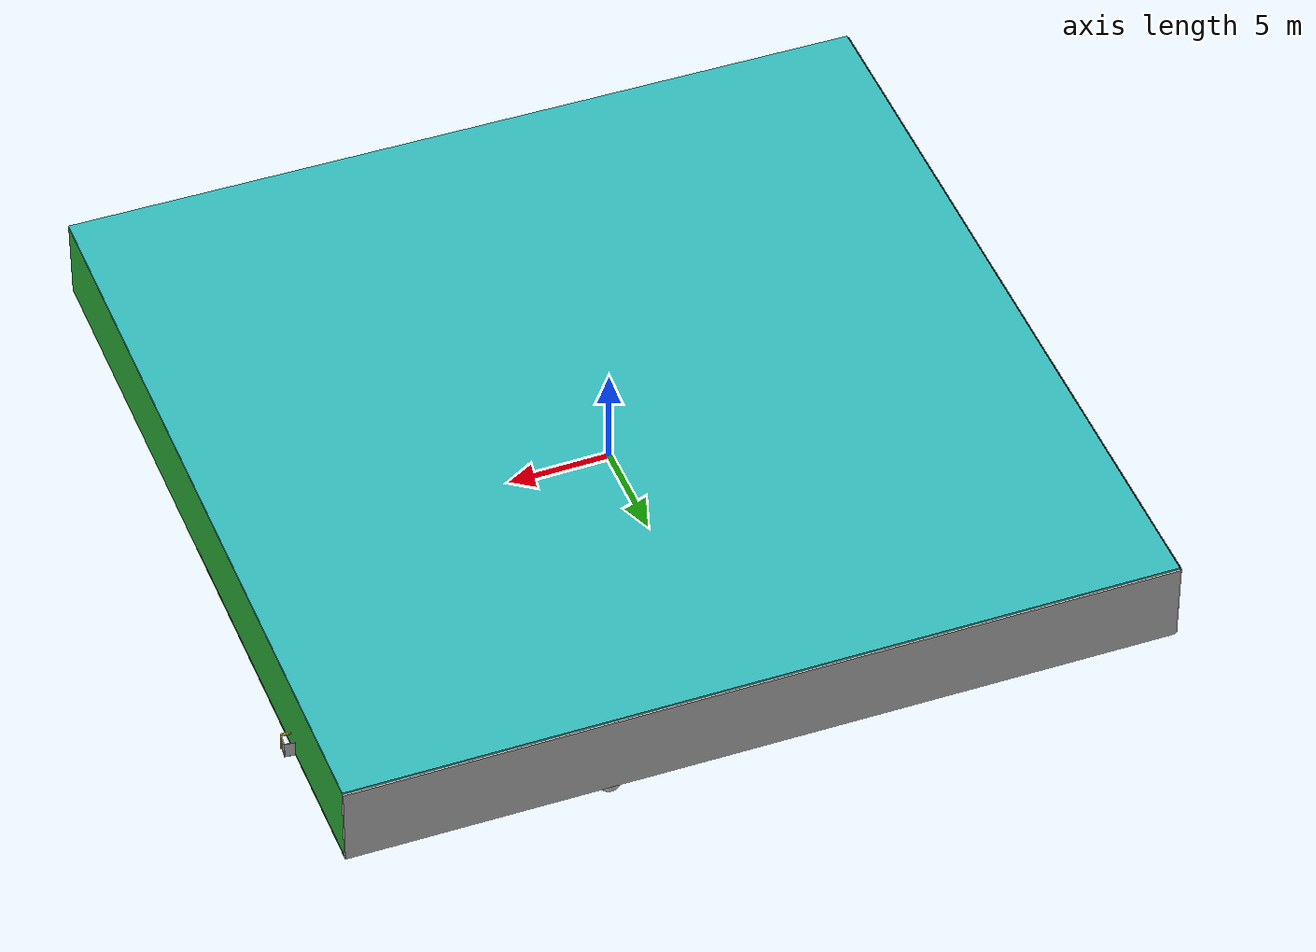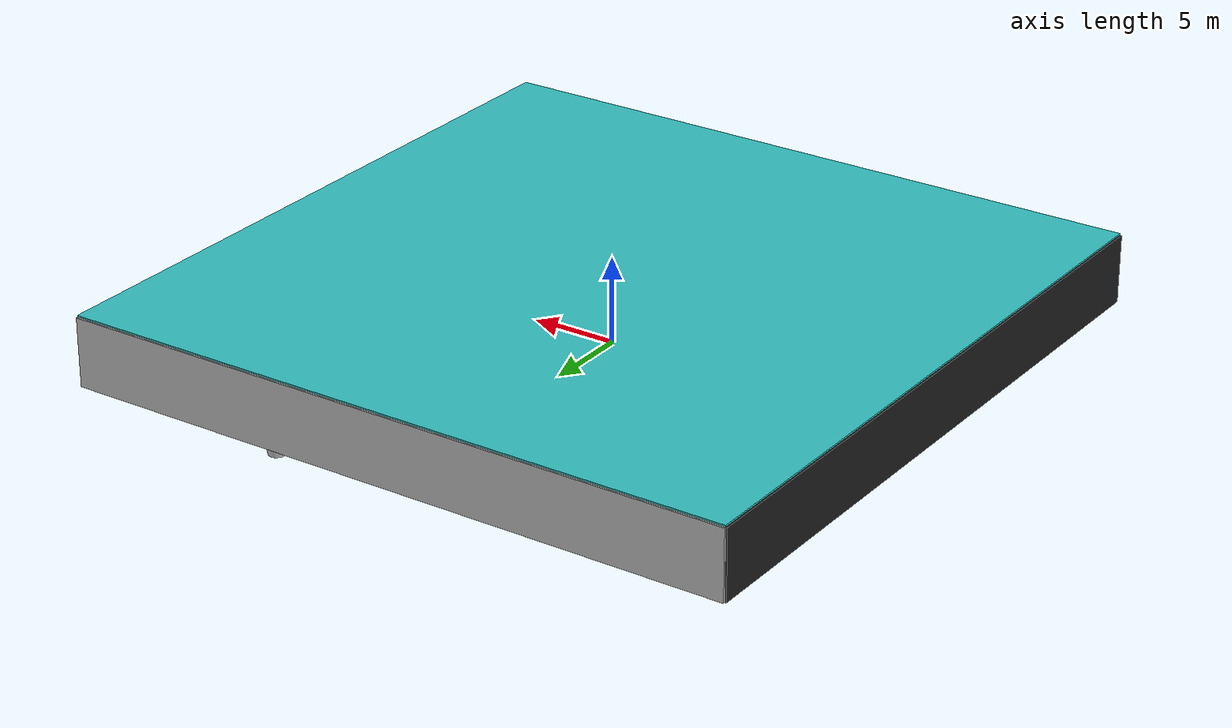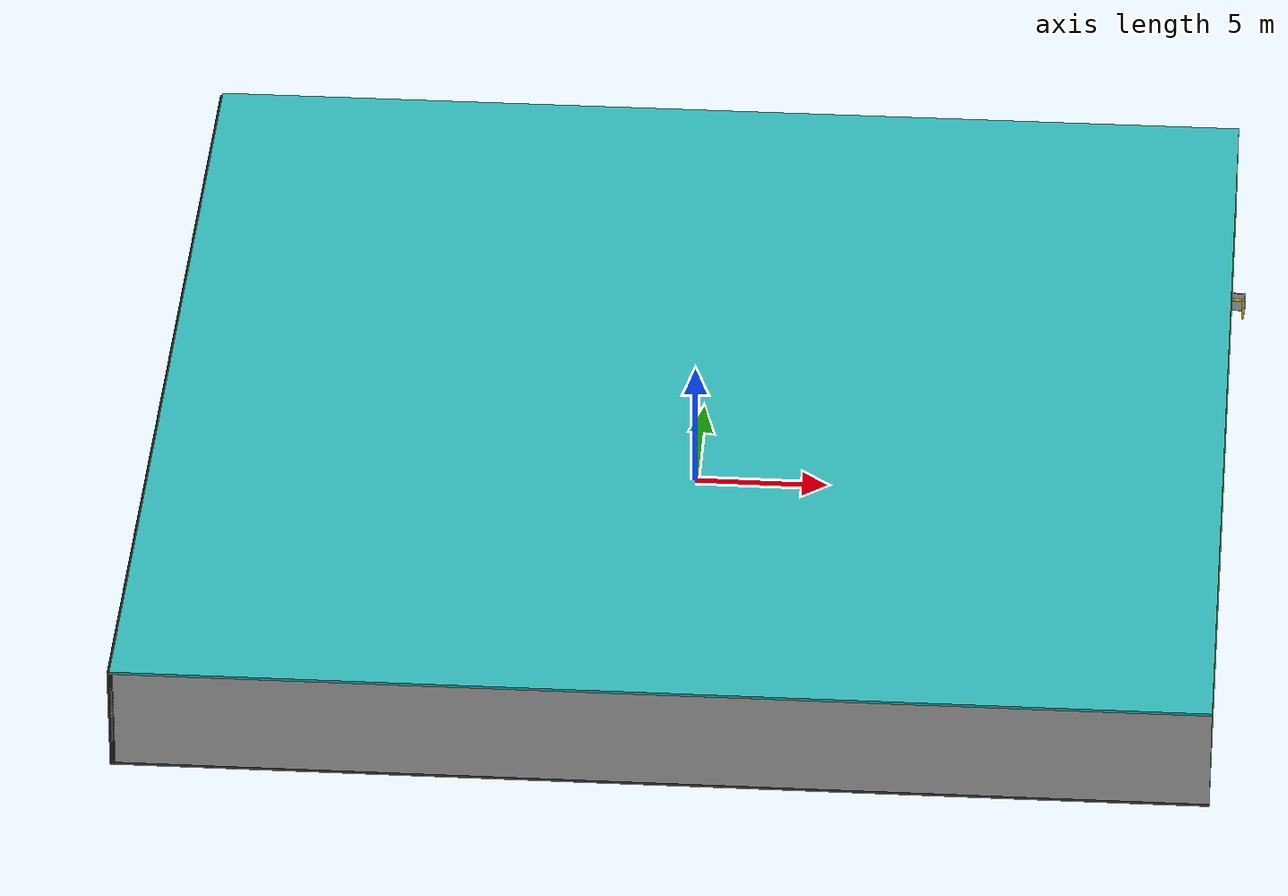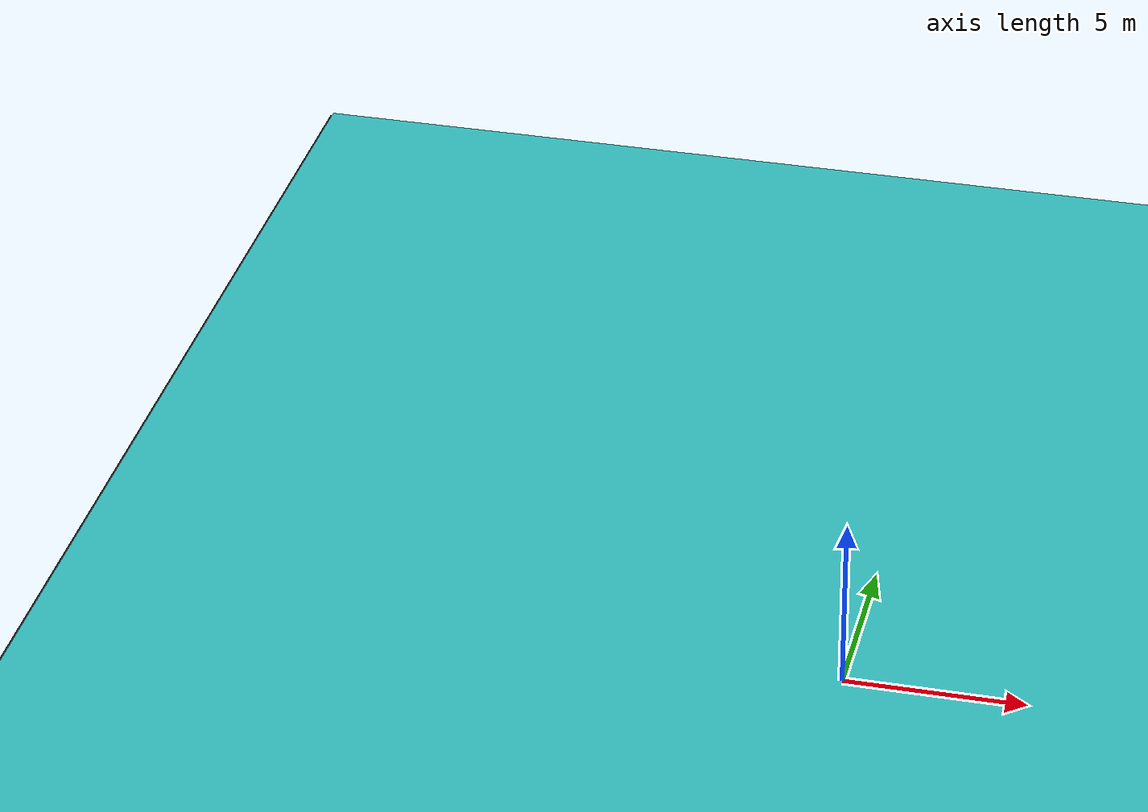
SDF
<sdf version="1.4">
 <world name="default">
  <physics type="ode">
   <max_step_size>0.001</max_step_size>
   <real_time_factor>1</real_time_factor>
   <real_time_update_rate>1000</real_time_update_rate>
   <gravity>0 0 -9.8</gravity>
  </physics>
  <scene><ambient>0.4 0.4 0.4 1</ambient><background>0.7 0.7 0.7 1</background><shadows>1</shadows></scene>
  <model name="Surrounding">
   <static>1</static>
   <link name="Ceiling">
    <collision name="Ceiling_Collision"><geometry><box><size>40 40 0.1</size></box></geometry></collision>
    <visual name="Ceiling_Visual">
     <geometry><box><size>40 40 0.1</size></box></geometry>
     <material>
      <script><uri>file://media/materials/scripts/gazebo.material</uri><name>Gazebo/TurquoiseGlow</name></script>
     </material>
    </visual>
    <pose>0 0 4.05 0 0 0</pose>
   </link>
   <link name="Wall_South">
    <collision name="Wall_South_Collision">
     <geometry><box><size>40 0 4</size></box></geometry>
     <pose>0 0 2 0 -0 0</pose>
    </collision>
    <visual name="Wall_South_Visual">
     <pose>0 0 2 0 -0 0</pose>
     <geometry><box><size>40 0 4</size></box></geometry>
     <material>
      <script><uri>file://media/materials/scripts/gazebo.material</uri><name>Gazebo/PioneerBody</name></script>
     </material>
    </visual>
    <velocity_decay><linear>0</linear><angular>0</angular></velocity_decay>
    <pose>0 -20 0 0 -0 0</pose>
   </link>
   <link name="Wall_East">
    <collision name="Wall_21_Collision">
     <geometry><box><size>40 0 4</size></box></geometry>
     <pose>0 0 2 0 -0 0</pose>
    </collision>
    <visual name="Wall_21_Visual">
     <pose>0 0 2 0 -0 0</pose>
     <geometry><box><size>40 0 4</size></box></geometry>
     <material>
      <script><uri>file://media/materials/scripts/gazebo.material</uri><name>Gazebo/GreenGlow</name></script>
     </material>
    </visual>
    <velocity_decay><linear>0</linear><angular>0</angular></velocity_decay>
    <pose>20 0 0 0 -0 1.5708</pose>
   </link>
   <link name="Wall_North">
    <collision name="Wall_22_Collision">
     <geometry><box><size>40 0.2 4</size></box></geometry>
     <pose>0 0 2 0 -0 0</pose>
    </collision>
    <visual name="Wall_22_Visual">
     <pose>0 0 2 0 -0 0</pose>
     <geometry><box><size>40 0.2 4</size></box></geometry>
     <material>
      <script><uri>file://media/materials/scripts/gazebo.material</uri><name>Gazebo/Pioneer2Body</name></script>
     </material>
    </visual>
    <velocity_decay><linear>0</linear><angular>0</angular></velocity_decay>
    <pose>0 20 0 0 -0 0</pose>
   </link>
   <link name="Wall_West">
    <collision name="Wall_23_Collision">
     <geometry><box><size>40 0.2 4</size></box></geometry>
     <pose>0 0 2 0 -0 0</pose>
    </collision>
    <visual name="Wall_23_Visual">
     <pose>0 0 2 0 -0 0</pose>
     <geometry><box><size>40 0.2 4</size></box></geometry>
     <material>
      <script><uri>file://media/materials/scripts/gazebo.material</uri><name>Gazebo/FlatBlack</name></script>
     </material>
    </visual>
    <velocity_decay><linear>0</linear><angular>0</angular></velocity_decay>
    <pose>-20 0 0 0 0 -1.5708</pose>
   </link>
   <link name="Ground_link">
    <collision name="collision">
     <pose>0 0 .05 0 -0 0</pose>
     <geometry><box><size>40 40 0.1</size></box></geometry>
    </collision>
    <visual name="visual">
     <pose>0 0 .05 0 -0 0</pose>
     <geometry><box><size>40 40 0.1</size></box></geometry>
     <material>
      <script><uri>file://media/materials/scripts/gazebo.material</uri><name>Gazebo/DarkGrey</name></script>
     </material>
    </visual>
   </link>
   <static>1</static>
  </model>
  <spherical_coordinates>
   <surface_model>EARTH_WGS84</surface_model>
   <latitude_deg>0</latitude_deg>
   <longitude_deg>0</longitude_deg>
   <elevation>0</elevation>
   <heading_deg>0</heading_deg>
  </spherical_coordinates>
  <light name="lightball_0" type="diffuse">
   <diffuse>0.8 0.8 0.8 1</diffuse>
   <specular>0.2 0.2 0.2 1</specular>
   <attenuation>
    <range>100</range>
    <constant>0.7</constant>
    <linear>0.01</linear>
    <quadratic>0.001</quadratic>
   </attenuation>
   <direction>-0.5 0.1 -0.9</direction>
   <pose>17.1950398933 1.52340579888 3.36579273794 0 0 0</pose>
  </light>
  <light name="lightball_1" type="diffuse">
   <diffuse>0.8 0.8 0.8 1</diffuse>
   <specular>0.2 0.2 0.2 1</specular>
   <attenuation>
    <range>100</range>
    <constant>0.7</constant>
    <linear>0.01</linear>
    <quadratic>0.001</quadratic>
   </attenuation>
   <direction>-0.5 0.1 -0.9</direction>
   <pose>11.5145455052 -0.476626288936 1.94318478318 0 0 0</pose>
  </light>
  <light name="lightball_2" type="diffuse">
   <diffuse>0.8 0.8 0.8 1</diffuse>
   <specular>0.2 0.2 0.2 1</specular>
   <attenuation>
    <range>100</range>
    <constant>0.7</constant>
    <linear>0.01</linear>
    <quadratic>0.001</quadratic>
   </attenuation>
   <direction>-0.5 0.1 -0.9</direction>
   <pose>-1.25723331347 -1.53501683383 1.11635649462 0 0 0</pose>
  </light>
  <light name="lightball_3" type="diffuse">
   <diffuse>0.8 0.8 0.8 1</diffuse>
   <specular>0.2 0.2 0.2 1</specular>
   <attenuation>
    <range>100</range>
    <constant>0.7</constant>
    <linear>0.01</linear>
    <quadratic>0.001</quadratic>
   </attenuation>
   <direction>-0.5 0.1 -0.9</direction>
   <pose>-1.37815876262 0.152905220363 1.46758902172 0 0 0</pose>
  </light>
  <light name="lightball_4" type="diffuse">
   <diffuse>0.8 0.8 0.8 1</diffuse>
   <specular>0.2 0.2 0.2 1</specular>
   <attenuation>
    <range>100</range>
    <constant>0.7</constant>
    <linear>0.01</linear>
    <quadratic>0.001</quadratic>
   </attenuation>
   <direction>-0.5 0.1 -0.9</direction>
   <pose>-9.76829045216 10.9815286515 3.01147337925 0 0 0</pose>
  </light>
  <light name="lightball_5" type="diffuse">
   <diffuse>0.8 0.8 0.8 1</diffuse>
   <specular>0.2 0.2 0.2 1</specular>
   <attenuation>
    <range>100</range>
    <constant>0.7</constant>
    <linear>0.01</linear>
    <quadratic>0.001</quadratic>
   </attenuation>
   <direction>-0.5 0.1 -0.9</direction>
   <pose>0.979733120933 9.67283650461 0.628512180669 0 0 0</pose>
  </light>
  <light name="lightball_6" type="diffuse">
   <diffuse>0.8 0.8 0.8 1</diffuse>
   <specular>0.2 0.2 0.2 1</specular>
   <attenuation>
    <range>100</range>
    <constant>0.7</constant>
    <linear>0.01</linear>
    <quadratic>0.001</quadratic>
   </attenuation>
   <direction>-0.5 0.1 -0.9</direction>
   <pose>15.7825248406 6.94056076726 3.71946546637 0 0 0</pose>
  </light>
  <light name="lightball_7" type="diffuse">
   <diffuse>0.8 0.8 0.8 1</diffuse>
   <specular>0.2 0.2 0.2 1</specular>
   <attenuation>
    <range>100</range>
    <constant>0.7</constant>
    <linear>0.01</linear>
    <quadratic>0.001</quadratic>
   </attenuation>
   <direction>-0.5 0.1 -0.9</direction>
   <pose>16.7571220412 14.529721912 1.86794351913 0 0 0</pose>
  </light>
  <light name="lightball_8" type="diffuse">
   <diffuse>0.8 0.8 0.8 1</diffuse>
   <specular>0.2 0.2 0.2 1</specular>
   <attenuation>
    <range>100</range>
    <constant>0.7</constant>
    <linear>0.01</linear>
    <quadratic>0.001</quadratic>
   </attenuation>
   <direction>-0.5 0.1 -0.9</direction>
   <pose>9.94083808413 18.5111942527 2.27572636198 0 0 0</pose>
  </light>
  <light name="lightball_9" type="diffuse">
   <diffuse>0.8 0.8 0.8 1</diffuse>
   <specular>0.2 0.2 0.2 1</specular>
   <attenuation>
    <range>100</range>
    <constant>0.7</constant>
    <linear>0.01</linear>
    <quadratic>0.001</quadratic>
   </attenuation>
   <direction>-0.5 0.1 -0.9</direction>
   <pose>-1.50381692652 -11.6818735711 0.510300355634 0 0 0</pose>
  </light>
  <light name="lightball_10" type="diffuse">
   <diffuse>0.8 0.8 0.8 1</diffuse>
   <specular>0.2 0.2 0.2 1</specular>
   <attenuation>
    <range>100</range>
    <constant>0.7</constant>
    <linear>0.01</linear>
    <quadratic>0.001</quadratic>
   </attenuation>
   <direction>-0.5 0.1 -0.9</direction>
   <pose>-3.54858285664 -8.41323004486 3.89097313025 0 0 0</pose>
  </light>
  <light name="lightball_11" type="diffuse">
   <diffuse>0.8 0.8 0.8 1</diffuse>
   <specular>0.2 0.2 0.2 1</specular>
   <attenuation>
    <range>100</range>
    <constant>0.7</constant>
    <linear>0.01</linear>
    <quadratic>0.001</quadratic>
   </attenuation>
   <direction>-0.5 0.1 -0.9</direction>
   <pose>17.4071292697 6.63045358165 1.10065959396 0 0 0</pose>
  </light>
  <light name="lightball_12" type="diffuse">
   <diffuse>0.8 0.8 0.8 1</diffuse>
   <specular>0.2 0.2 0.2 1</specular>
   <attenuation>
    <range>100</range>
    <constant>0.7</constant>
    <linear>0.01</linear>
    <quadratic>0.001</quadratic>
   </attenuation>
   <direction>-0.5 0.1 -0.9</direction>
   <pose>-18.6734255468 -4.96823863499 1.166602129 0 0 0</pose>
  </light>
  <include><uri>model://cabinet</uri><pose>-13.7819393923 4.47937218644 0 0 0 1.53930321638</pose></include>
  <include>
   <uri>model://robocup_3Dsim_goal</uri>
   <pose>-14.0041854547 12.4732440774 0 0 0 1.56915571021</pose>
  </include>
  <include><uri>model://cabinet</uri><pose>-10.6068588389 -10.8033057449 0 0 0 2.68961598201</pose></include>
  <include>
   <uri>model://robocup_3Dsim_goal</uri>
   <pose>-11.4542067232 -4.97287019588 0 0 0 2.44186407861</pose>
  </include>
  <include><uri>model://table</uri><pose>-12.6955603686 6.56455700382 0 0 0 1.47450510736</pose></include>
  <include><uri>model://cabinet</uri><pose>-11.9838554397 10.0642847991 0 0 0 1.332854807</pose></include>
  <include>
   <uri>model://robocup_3Dsim_goal</uri>
   <pose>-9.23298865936 3.84536287853 0 0 0 1.46994527953</pose>
  </include>
  <include><uri>model://cabinet</uri><pose>-8.91530169358 6.4446823567 0 0 0 1.93919062802</pose></include>
  <include><uri>model://table</uri><pose>-8.22944613376 11.4657896486 0 0 0 1.95543893356</pose></include>
  <include><uri>model://cabinet</uri><pose>-6.66005922369 -7.56430110817 0 0 0 1.8993445526</pose></include>
  <include>
   <uri>model://robocup_3Dsim_goal</uri>
   <pose>-6.27562371768 10.2606931075 0 0 0 1.75597929939</pose>
  </include>
  <include><uri>model://table</uri><pose>-5.2995648928 13.3896268099 0 0 0 1.86473771087</pose></include>
  <include>
   <uri>model://robocup_3Dsim_goal</uri>
   <pose>-3.58974937859 -6.31854275361 0 0 0 1.63158127725</pose>
  </include>
  <include>
   <uri>model://robocup_3Dsim_goal</uri>
   <pose>-2.83567922243 5.88442989499 0 0 0 0.402951263064</pose>
  </include>
  <include>
   <uri>model://robocup_3Dsim_goal</uri>
   <pose>0.294877522645 -12.4299361234 0 0 0 0.558585135099</pose>
  </include>
  <include>
   <uri>model://construction_cone</uri>
   <pose>1.59526769307 -8.90194005903 0 0 0 0.022300252082</pose>
  </include>
  <include><uri>model://cabinet</uri><pose>4.62646683939 4.18468520075 0 0 0 0.572265659987</pose></include>
  <include><uri>model://cabinet</uri><pose>2.87021371651 15.9353438641 0 0 0 1.54805927213</pose></include>
  <include>
   <uri>model://textured_shapes</uri>
   <pose>5.53675409464 -13.9188065182 0 0 0 1.44785217087</pose>
  </include>
  <include>
   <uri>model://textured_shapes</uri>
   <pose>7.56384222278 17.9206229365 0 0 0 0.153821472817</pose>
  </include>
  <include>
   <uri>model://textured_shapes</uri>
   <pose>9.07546133351 6.32874742587 0 0 0 1.81471430213</pose>
  </include>
  <include>
   <uri>model://textured_shapes</uri>
   <pose>9.19256112194 16.0438687281 0 0 0 0.581998210496</pose>
  </include>
  <include>
   <uri>model://construction_cone</uri>
   <pose>13.5923879792 -3.59953023837 0 0 0 1.18235740132</pose>
  </include>
  <include>
   <uri>model://textured_shapes</uri>
   <pose>12.274845813 13.2201795272 0 0 0 1.52475812523</pose>
  </include>
  <include>
   <uri>model://construction_cone</uri>
   <pose>11.4497002548 17.9033087206 0 0 0 1.77796507154</pose>
  </include>
  <include>
   <uri>model://textured_shapes</uri>
   <pose>14.7084906982 -11.6418640304 0 0 0 0.0435031257603</pose>
  </include>
  <include>
   <uri>model://construction_cone</uri>
   <pose>18.6583901903 -9.27950529597 0 0 0 2.04191605581</pose>
  </include>
  <include><uri>model://cabinet</uri><pose>18.0858076863 4.05205979012 0 0 0 0.759636615148</pose></include>
  <include><uri>model://cabinet</uri><pose>19.087879639 7.4454431369 0 0 0 2.55783049489</pose></include>
  <include>
   <uri>model://robocup_3Dsim_goal</uri>
   <pose>19.3928400115 12.7571373985 0 0 0 1.45829357545</pose>
  </include>
 </world>
</sdf>

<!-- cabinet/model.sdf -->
<sdf version="1.5">
  <model name="cabinet">
    <static>true</static>
    <link name="cabinet_bottom_plate">
      <inertial>
        <pose>0 0 -1 0 0 0</pose>
        <inertia>
          <ixx>2.050000</ixx>
          <ixy>0</ixy>
          <ixz>0</ixz>
          <iyy>2.050000</iyy>
          <iyz>0</iyz>
          <izz>2.050000</izz>
        </inertia>
        <mass>25.000000</mass>
      </inertial>
      <collision name="cabinet_bottom_plate_geom">
        <pose>0 0 0.010000 0 0 0</pose>
        <geometry>
          <box>
            <size>0.450000 0.450000 0.020000</size>
          </box>
        </geometry>
      </collision>
      <visual name="cabinet_bottom_plate_geom_visual">
        <pose>0 0 0.010000 0 0 0</pose>
        <geometry>
          <box>
            <size>0.450000 0.450000 0.020000</size>
          </box>
        </geometry>
        <material>
          <script>
            <uri>model://media/materials/scripts/gazebo.material</uri>
            <name>Gazebo/Wood</name>
          </script>
        </material>
      </visual>
      <collision name="cabinet_bottom_plate_geom_cabinet_back_plate">
        <pose>0.235000 0 0.510000 0 0 0</pose>
        <geometry>
          <box>
            <size>0.020000 0.450000 1.020000</size>
          </box>
        </geometry>
      </collision>
      <visual name="cabinet_bottom_plate_geom_cabinet_back_plate_visual">
        <pose>0.235000 0 0.510000 0 0 0</pose>
        <geometry>
          <box>
            <size>0.020000 0.450000 1.020000</size>
          </box>
        </geometry>
        <material>
          <script>
            <uri>model://media/materials/scripts/gazebo.material</uri>
            <name>Gazebo/Wood</name>
          </script>
        </material>
      </visual>
      <collision name="cabinet_bottom_plate_geom_cabinet_left_plate">
        <pose>0 0.235000 0.510000 0 0 0</pose>
        <geometry>
          <box>
            <size>0.450000 0.020000 1.020000</size>
          </box>
        </geometry>
      </collision>
      <visual name="cabinet_bottom_plate_geom_cabinet_left_plate_visual">
        <pose>0 0.235000 0.510000 0 0 0</pose>
        <geometry>
          <box>
            <size>0.450000 0.020000 1.020000</size>
          </box>
        </geometry>
        <material>
          <script>
            <uri>model://media/materials/scripts/gazebo.material</uri>
            <name>Gazebo/Wood</name>
          </script>
        </material>
      </visual>
      <collision name="cabinet_bottom_plate_geom_cabinet_middle_plate">
        <pose>0 0 0.510000 0 0 0</pose>
        <geometry>
          <box>
            <size>0.450000 0.450000 0.020000</size>
          </box>
        </geometry>
      </collision>
      <visual name="cabinet_bottom_plate_geom_cabinet_middle_plate_visual">
        <pose>0 0 0.510000 0 0 0</pose>
        <geometry>
          <box>
            <size>0.450000 0.450000 0.020000</size>
          </box>
        </geometry>
        <material>
          <script>
            <uri>model://media/materials/scripts/gazebo.material</uri>
            <name>Gazebo/Wood</name>
          </script>
        </material>
      </visual>
      <collision name="cabinet_bottom_plate_geom_cabinet_right_plate">
        <pose>0 -0.235000 0.510000 0 0 0</pose>
        <geometry>
          <box>
            <size>0.450000 0.020000 1.020000</size>
          </box>
        </geometry>
      </collision>
      <visual name="cabinet_bottom_plate_geom_cabinet_right_plate_visual">
        <pose>0 -0.235000 0.510000 0 0 0</pose>
        <geometry>
          <box>
            <size>0.450000 0.020000 1.020000</size>
          </box>
        </geometry>
        <material>
          <script>
            <uri>model://media/materials/scripts/gazebo.material</uri>
            <name>Gazebo/Wood</name>
          </script>
        </material>
      </visual>
      <collision name="cabinet_bottom_plate_geom_cabinet_top_plate">
        <pose>0 0 1.010000 0 0 0</pose>
        <geometry>
          <box>
            <size>0.450000 0.450000 0.020000</size>
          </box>
        </geometry>
      </collision>
      <visual name="cabinet_bottom_plate_geom_cabinet_top_plate_visual">
        <pose>0 0 1.010000 0 0 0</pose>
        <geometry>
          <box>
            <size>0.450000 0.450000 0.020000</size>
          </box>
        </geometry>
        <material>
          <script>
            <uri>model://media/materials/scripts/gazebo.material</uri>
            <name>Gazebo/Wood</name>
          </script>
        </material>
      </visual>
    </link>
  </model>
</sdf>

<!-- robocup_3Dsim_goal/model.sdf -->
<sdf version="1.5">
  <model name="robocup_3d_goal">
    <static>true</static>
    <link name="left_post">
      <pose>0 1.05 0.45 0 0 0</pose>
      <collision name="collision">
        <geometry>
          <cylinder>
            <radius>0.05</radius>
            <length>0.9</length>
          </cylinder>
        </geometry>
      </collision>
      <visual name="visual">
        <geometry>
          <cylinder>
            <radius>0.05</radius>
            <length>0.9</length>
          </cylinder>
        </geometry>
        <material>
          <script>
            <uri>file://media/materials/scripts/gazebo.material</uri>
            <name>Gazebo/ZincYellow</name>
          </script>
        </material>
      </visual>
    </link>
    <link name="left_support_horiz_lower">
      <pose>0.30 1.05 0.01 0 0 0</pose>
      <collision name="collision">
        <geometry>
          <box>
            <size>0.50 0.02 0.02</size>
          </box>
        </geometry>
      </collision>
      <visual name="visual">
        <geometry>
          <box>
            <size>0.50 0.02 0.02</size>
          </box>
        </geometry>
        <material>
          <script>
            <uri>file://media/materials/scripts/gazebo.material</uri>
            <name>Gazebo/White</name>
          </script>
        </material>
      </visual>
    </link>
    <link name="left_support_horiz_upper">
      <pose>0.30 1.05 0.79 0 0 0</pose>
      <collision name="collision">
        <geometry>
          <box>
            <size>0.50 0.02 0.02</size>
          </box>
        </geometry>
      </collision>
      <visual name="visual">
        <geometry>
          <box>
            <size>0.50 0.02 0.02</size>
          </box>
        </geometry>
        <material>
          <script>
            <uri>file://media/materials/scripts/gazebo.material</uri>
            <name>Gazebo/White</name>
          </script>
        </material>
      </visual>
    </link>
    <link name="left_support_vertical">
      <pose>0.56 1.05 0.4 0 1.5708 0</pose>
      <collision name="collision">
        <geometry>
          <box>
            <size>0.80 0.02 0.02</size>
          </box>
        </geometry>
      </collision>
      <visual name="visual">
        <geometry>
          <box>
            <size>0.80 0.02 0.02</size>
          </box>
        </geometry>
        <material>
          <script>
            <uri>file://media/materials/scripts/gazebo.material</uri>
            <name>Gazebo/White</name>
          </script>
        </material>
      </visual>
    </link>
    <link name="right_support_horiz_lower">
      <pose>0.30 -1.05 0.01 0 0 0</pose>
      <collision name="collision">
        <geometry>
          <box>
            <size>0.50 0.02 0.02</size>
          </box>
        </geometry>
      </collision>
      <visual name="visual">
        <geometry>
          <box>
            <size>0.50 0.02 0.02</size>
          </box>
        </geometry>
        <material>
          <script>
            <uri>file://media/materials/scripts/gazebo.material</uri>
            <name>Gazebo/White</name>
          </script>
        </material>
      </visual>
    </link>
    <link name="right_support_horiz_upper">
      <pose>0.30 -1.05 0.79 0 0 0</pose>
      <collision name="collision">
        <geometry>
          <box>
            <size>0.50 0.02 0.02</size>
          </box>
        </geometry>
      </collision>
      <visual name="visual">
        <geometry>
          <box>
            <size>0.50 0.02 0.02</size>
          </box>
        </geometry>
        <material>
          <script>
            <uri>file://media/materials/scripts/gazebo.material</uri>
            <name>Gazebo/White</name>
          </script>
        </material>
      </visual>
    </link>
    <link name="right_support_vertical">
      <pose>0.56 -1.05 0.4 0 1.5708 0</pose>
      <collision name="collision">
        <geometry>
          <box>
            <size>0.80 0.02 0.02</size>
          </box>
        </geometry>
      </collision>
      <visual name="visual">
        <geometry>
          <box>
            <size>0.80 0.02 0.02</size>
          </box>
        </geometry>
        <material>
          <script>
            <uri>file://media/materials/scripts/gazebo.material</uri>
            <name>Gazebo/White</name>
          </script>
        </material>
      </visual>
    </link>
    <link name="center_support_horiz_lower">
      <pose>0.56 0 0.01 0 1.5708 0</pose>
      <collision name="collision">
        <geometry>
          <box>
            <size>0.02 2.08 0.02</size>
          </box>
        </geometry>
      </collision>
      <visual name="visual">
        <geometry>
          <box>
            <size>0.02 2.08 0.02</size>
          </box>
        </geometry>
        <material>
          <script>
            <uri>file://media/materials/scripts/gazebo.material</uri>
            <name>Gazebo/White</name>
          </script>
        </material>
      </visual>
    </link>
    <link name="center_support_horiz_upper">
      <pose>0.56 0 0.79 0 1.5708 0</pose>
      <collision name="collision">
        <geometry>
          <box>
            <size>0.02 2.08 0.02</size>
          </box>
        </geometry>
      </collision>
      <visual name="visual">
        <geometry>
          <box>
            <size>0.02 2.08 0.02</size>
          </box>
        </geometry>
        <material>
          <script>
            <uri>file://media/materials/scripts/gazebo.material</uri>
            <name>Gazebo/White</name>
          </script>
        </material>
      </visual>
    </link>
    <link name="right_post">
      <pose>0 -1.05 0.45 0 0 0</pose>
      <collision name="collision">
        <geometry>
          <cylinder>
            <radius>0.05</radius>
            <length>0.9</length>
          </cylinder>
        </geometry>
      </collision>
      <visual name="visual">
        <geometry>
          <cylinder>
            <radius>0.05</radius>
            <length>0.9</length>
          </cylinder>
        </geometry>
        <material>
          <script>
            <uri>file://media/materials/scripts/gazebo.material</uri>
            <name>Gazebo/ZincYellow</name>
          </script>
        </material>
      </visual>
    </link>
    <link name="crossbar">
      <pose>0 0 0.85 1.57 1.57 0</pose>
      <collision name="collision">
        <geometry>
          <cylinder>
            <radius>0.05</radius>
            <length>2.0</length>
          </cylinder>
        </geometry>
      </collision>
      <visual name="visual">
        <geometry>
          <cylinder>
            <radius>0.05</radius>
            <length>2.0</length>
          </cylinder>
        </geometry>
        <material>
          <script>
            <uri>file://media/materials/scripts/gazebo.material</uri>
            <name>Gazebo/ZincYellow</name>
          </script>
        </material>
      </visual>
    </link>
    <link name="center_net">
      <pose>0.56 0 0.40 0 0 0</pose>
      <collision name="collision">
        <geometry>
          <box>
            <size>0.01 2.1 0.80</size>
          </box>
        </geometry>
      </collision>
      <visual name="visual">
        <geometry>
          <box>
            <size>0.01 2.1 0.80</size>
          </box>
        </geometry>
        <material>
          <script>
            <uri>model://../model_source/models/robocup09_spl_field/materials/scripts/</uri>
            <uri>model://../model_source/models/robocup09_spl_field/materials/textures/</uri>
            <name>RoboCup/Net</name>
          </script>
        </material>
      </visual>
    </link>
    <link name="left_net">
      <pose>0.30 1.05 0.40 0 0 0</pose>
      <collision name="collision">
        <geometry>
          <box>
            <size>0.50 0.01 0.76</size>
          </box>
        </geometry>
      </collision>
      <visual name="visual">
        <geometry>
          <box>
            <size>0.50 0.01 0.76</size>
          </box>
        </geometry>
        <material>
          <script>
            <uri>model://../model_source/models/robocup09_spl_field/materials/scripts/</uri>
            <uri>model://../model_source/models/robocup09_spl_field/materials/textures/</uri>
            <name>RoboCup/Net</name>
          </script>
        </material>
      </visual>
    </link>
    <link name="right_net">
      <pose>0.30 -1.05 0.40 0 0 0</pose>
      <collision name="collision">
        <geometry>
          <box>
            <size>0.50 0.01 0.76</size>
          </box>
        </geometry>
      </collision>
      <visual name="visual">
        <geometry>
          <box>
            <size>0.50 0.01 0.76</size>
          </box>
        </geometry>
        <material>
          <script>
            <uri>model://../model_source/models/robocup09_spl_field/materials/scripts/</uri>
            <uri>model://../model_source/models/robocup09_spl_field/materials/textures/</uri>
            <name>RoboCup/Net</name>
          </script>
        </material>
      </visual>
    </link>
  </model>
</sdf>

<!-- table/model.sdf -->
<sdf version="1.5">
  <model name="table">
    <static>true</static>
    <link name="link">
      <collision name="surface">
        <pose>0 0 1.0 0 0 0</pose>
        <geometry>
          <box>
            <size>1.5 0.8 0.03</size>
          </box>
        </geometry>
        <surface>
          <friction>
            <ode>
              <mu>0.6</mu>
              <mu2>0.6</mu2>
            </ode>
          </friction>
        </surface>
      </collision>
      <visual name="visual1">
        <pose>0 0 1.0 0 0 0</pose>
        <geometry>
          <box>
            <size>1.5 0.8 0.03</size>
          </box>
        </geometry>
        <material>
          <script>
            <uri>model://media/materials/scripts/gazebo.material</uri>
            <name>Gazebo/Wood</name>
          </script>
        </material>
      </visual>
      <collision name="front_left_leg">
        <pose>0.68 0.38 0.5 0 0 0</pose>
        <geometry>
          <cylinder>
            <radius>0.02</radius>
            <length>1.0</length>
          </cylinder>
        </geometry>
      </collision>
      <visual name="front_left_leg">
        <pose>0.68 0.38 0.5 0 0 0</pose>
        <geometry>
          <cylinder>
            <radius>0.02</radius>
            <length>1.0</length>
          </cylinder>
        </geometry>
        <material>
          <script>
            <uri>model://media/materials/scripts/gazebo.material</uri>
            <name>Gazebo/Grey</name>
          </script>
        </material>
      </visual>
      <collision name="front_right_leg">
        <pose>0.68 -0.38 0.5 0 0 0</pose>
        <geometry>
          <cylinder>
            <radius>0.02</radius>
            <length>1.0</length>
          </cylinder>
        </geometry>
      </collision>
      <visual name="front_right_leg">
        <pose>0.68 -0.38 0.5 0 0 0</pose>
        <geometry>
          <cylinder>
            <radius>0.02</radius>
            <length>1.0</length>
          </cylinder>
        </geometry>
        <material>
          <script>
            <uri>model://media/materials/scripts/gazebo.material</uri>
            <name>Gazebo/Grey</name>
          </script>
        </material>
      </visual>
      <collision name="back_right_leg">
        <pose>-0.68 -0.38 0.5 0 0 0</pose>
        <geometry>
          <cylinder>
            <radius>0.02</radius>
            <length>1.0</length>
          </cylinder>
        </geometry>
      </collision>
      <visual name="back_right_leg">
        <pose>-0.68 -0.38 0.5 0 0 0</pose>
        <geometry>
          <cylinder>
            <radius>0.02</radius>
            <length>1.0</length>
          </cylinder>
        </geometry>
        <material>
          <script>
            <uri>model://media/materials/scripts/gazebo.material</uri>
            <name>Gazebo/Grey</name>
          </script>
        </material>
      </visual>
      <collision name="back_left_leg">
        <pose>-0.68 0.38 0.5 0 0 0</pose>
        <geometry>
          <cylinder>
            <radius>0.02</radius>
            <length>1.0</length>
          </cylinder>
        </geometry>
      </collision>
      <visual name="back_left_leg">
        <pose>-0.68 0.38 0.5 0 0 0</pose>
        <geometry>
          <cylinder>
            <radius>0.02</radius>
            <length>1.0</length>
          </cylinder>
        </geometry>
        <material>
          <script>
            <uri>model://media/materials/scripts/gazebo.material</uri>
            <name>Gazebo/Grey</name>
          </script>
        </material>
      </visual>
    </link>
  </model>
</sdf>

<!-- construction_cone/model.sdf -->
<sdf version="1.5">
  <model name="Construction Cone">
    <link name="link">
      <collision name="collision">
        <geometry>
          <mesh>
            <scale>10 10 10</scale>
            <uri>file://isr-testbed/construction_cone/meshes/construction_cone.dae</uri>
          </mesh>
        </geometry>
      </collision>
      <visual name="visual">
        <geometry>
          <mesh>
            <scale>10 10 10</scale>
            <uri>file://isr-testbed/construction_cone/meshes/construction_cone.dae</uri>
          </mesh>
        </geometry>
      </visual>
    </link>
  </model>
</sdf>

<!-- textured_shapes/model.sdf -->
<sdf version="1.6">
  <model name="textured_shapes">
    <pose>0 0 0.5 0 0 0</pose>
    <link name="box">
      <pose>0 -1.5 0 0 0 0</pose>
      <collision name="collision">
        <geometry>
          <box>
            <size>1 1 1</size>
          </box>
        </geometry>
      </collision>
      <visual name="visual">
        <geometry>
          <box>
            <size>1 1 1</size>
          </box>
        </geometry>
        <material>
          <script>
            <uri>model://../model_source/models/textured_shapes/materials/scripts</uri>
            <uri>model://../model_source/models/textured_shapes/materials/textures</uri>
            <name>TexturedShape/Squares</name>
          </script>
        </material>
      </visual>
    </link>
    <link name="sphere">
      <collision name="collision">
        <geometry>
          <sphere>
            <radius>0.5</radius>
          </sphere>
        </geometry>
      </collision>
      <visual name="visual">
        <geometry>
          <sphere>
            <radius>0.5</radius>
          </sphere>
        </geometry>
        <material>
          <script>
            <uri>model://../model_source/models/textured_shapes/materials/scripts</uri>
            <uri>model://../model_source/models/textured_shapes/materials/textures</uri>
            <name>TexturedShape/Squares</name>
          </script>
        </material>
      </visual>
    </link>
    <link name="cylinder">
      <pose>0 1.5 0 0 0 0</pose>
      <collision name="collision">
        <geometry>
          <cylinder>
            <radius>0.5</radius>
            <length>1</length>
          </cylinder>
        </geometry>
      </collision>
      <visual name="visual">
        <geometry>
          <cylinder>
            <radius>0.5</radius>
            <length>1</length>
          </cylinder>
        </geometry>
        <material>
          <script>
            <uri>model://../model_source/models/textured_shapes/materials/scripts</uri>
            <uri>model://../model_source/models/textured_shapes/materials/textures</uri>
            <name>TexturedShape/Squares</name>
          </script>
        </material>
      </visual>
    </link>
  </model>
</sdf>
